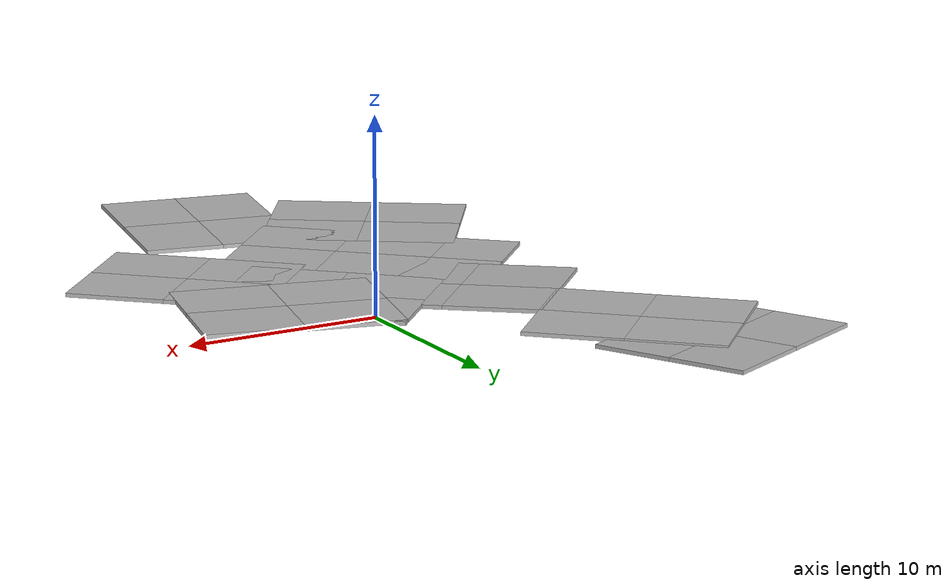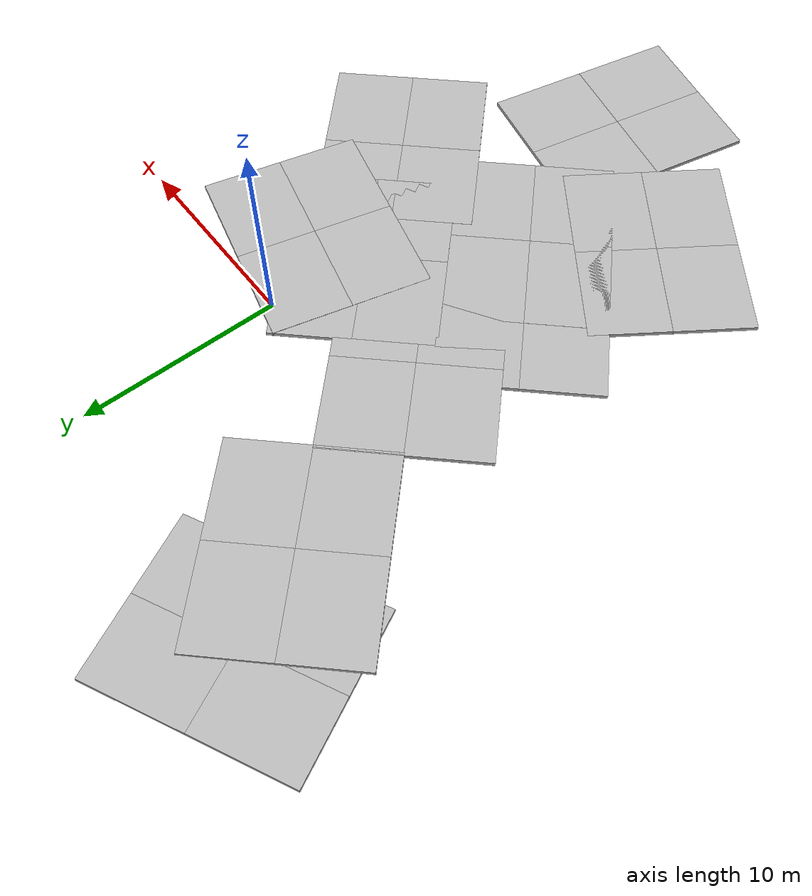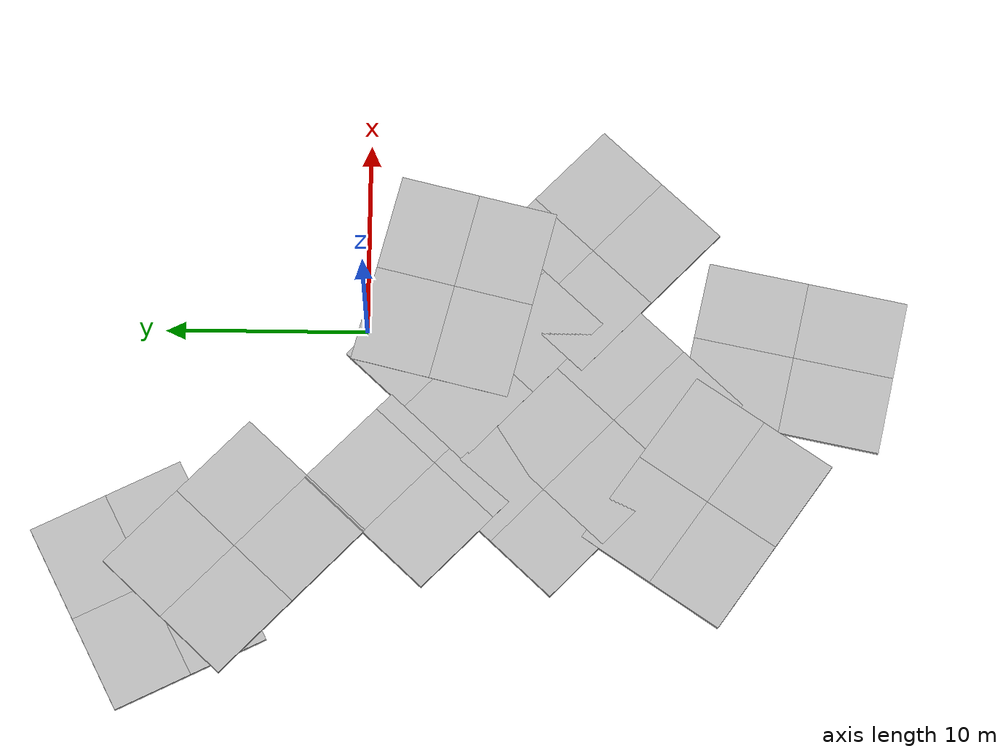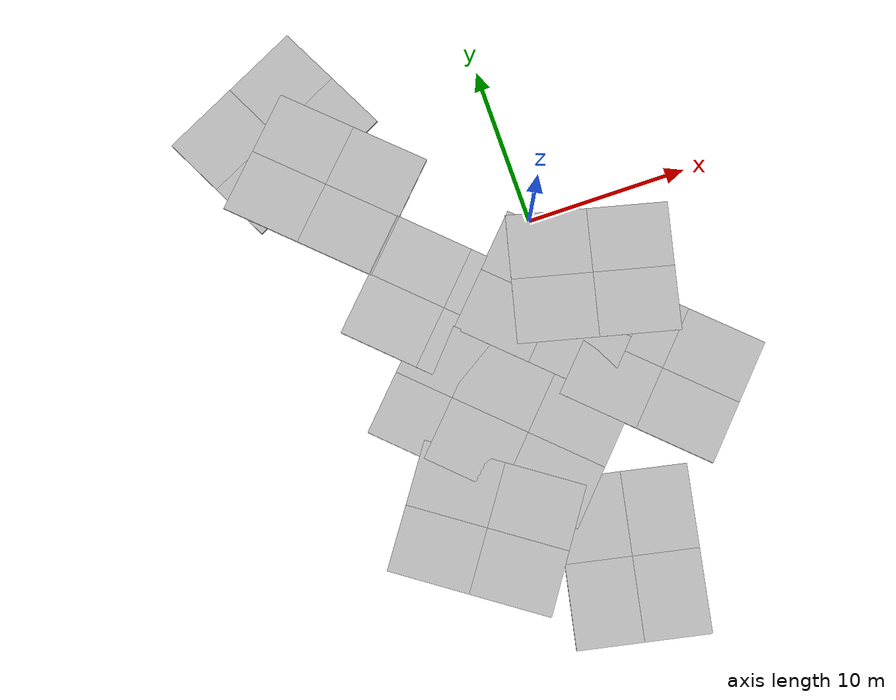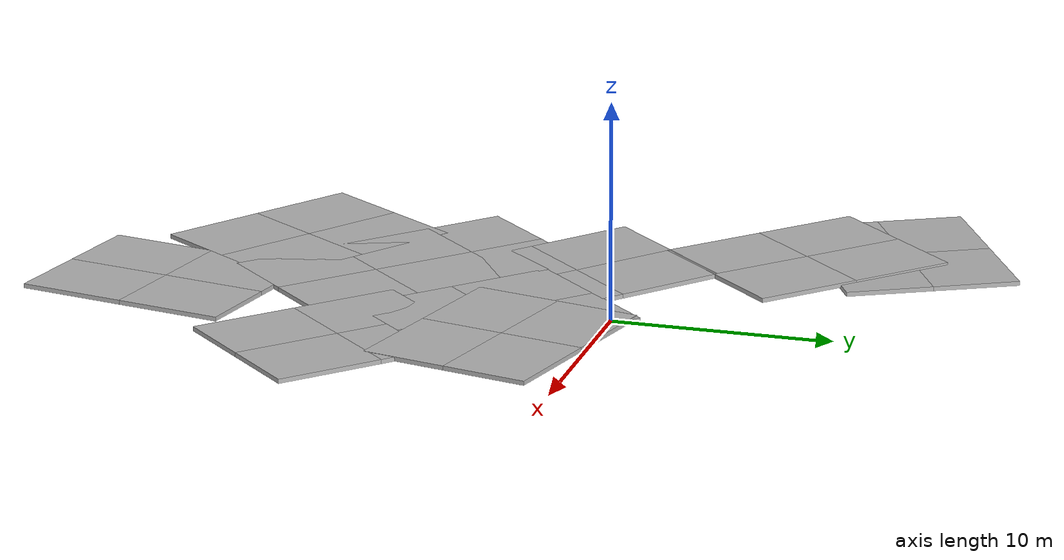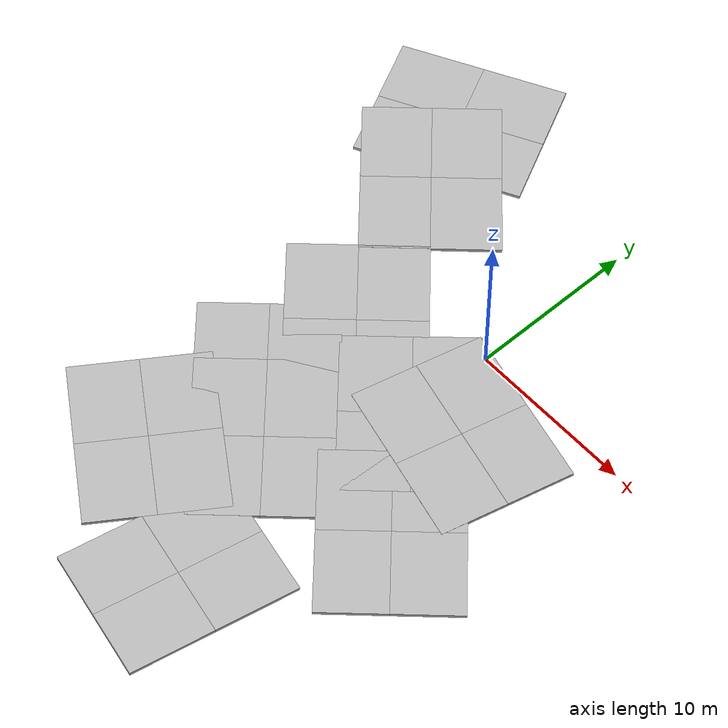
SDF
<sdf version="1.6">
 <world name="default">
  <scene>
   <sky><clouds><speed>12</speed></clouds></sky>
   <ambient>1 1 1 1</ambient>
   <shadows>1</shadows>
   <background>0.7 0.7 0.7 1</background>
  </scene>
  <light name="sun" type="directional">
   <pose>0 0 10 0 -0 0</pose>
   <diffuse>0.8 0.8 0.8 1</diffuse>
   <specular>0.2 0.2 0.2 1</specular>
   <attenuation>
    <range>1000</range>
    <constant>0.9</constant>
    <linear>0.01</linear>
    <quadratic>0.001</quadratic>
   </attenuation>
   <direction>-0.5 0.1 -0.9</direction>
  </light>
  <gravity>0 0 -9.8</gravity>
  <magnetic_field>6e-06 2.3e-05 -4.2e-05</magnetic_field>
  <atmosphere type="adiabatic"/>
  <physics name="default_physics" default="0" type="ode">
   <max_step_size>0.001</max_step_size>
   <real_time_factor>1</real_time_factor>
   <real_time_update_rate>1000</real_time_update_rate>
  </physics>
  <spherical_coordinates>
   <surface_model>EARTH_WGS84</surface_model>
   <latitude_deg>0</latitude_deg>
   <longitude_deg>0</longitude_deg>
   <elevation>0</elevation>
   <heading_deg>0</heading_deg>
  </spherical_coordinates>
  <model name="mud_box">
   <static>1</static>
   <link name="link">
    <collision name="collision">
     <geometry><box><size>8 10 0.2</size></box></geometry>
     <surface><friction><ode><mu>0.15</mu><mu2>0.15</mu2></ode></friction></surface>
    </collision>
    <visual name="visual_1">
     <pose>-2 2.5 0 0 -0 0</pose>
     <cast_shadows>0</cast_shadows>
     <geometry><box><size>4 5 0.2</size></box></geometry>
     <material>
      <script>
       <uri>model://mud_box/materials/scripts</uri>
       <uri>model://mud_box/materials/textures</uri>
       <name>vrc/mud</name>
      </script>
     </material>
    </visual>
    <visual name="visual_2">
     <pose>2 2.5 0 0 -0 0</pose>
     <cast_shadows>0</cast_shadows>
     <geometry><box><size>4 5 0.2</size></box></geometry>
     <material>
      <script>
       <uri>model://mud_box/materials/scripts</uri>
       <uri>model://mud_box/materials/textures</uri>
       <name>vrc/mud</name>
      </script>
     </material>
    </visual>
    <visual name="visual_3">
     <pose>2 -2.5 0 0 -0 0</pose>
     <cast_shadows>0</cast_shadows>
     <geometry><box><size>4 5 0.2</size></box></geometry>
     <material>
      <script>
       <uri>model://mud_box/materials/scripts</uri>
       <uri>model://mud_box/materials/textures</uri>
       <name>vrc/mud</name>
      </script>
     </material>
    </visual>
    <visual name="visual_4">
     <pose>-2 -2.5 0 0 -0 0</pose>
     <cast_shadows>0</cast_shadows>
     <geometry><box><size>4 5 0.2</size></box></geometry>
     <material>
      <script>
       <uri>model://mud_box/materials/scripts</uri>
       <uri>model://mud_box/materials/textures</uri>
       <name>vrc/mud</name>
      </script>
     </material>
    </visual>
   </link>
   <pose>-7.04174 -9.64287 -0.20001 0.003053 -0.000788 0.81082</pose>
  </model>
  <model name="mud_box_clone">
   <static>1</static>
   <link name="link">
    <collision name="collision">
     <geometry><box><size>8 10 0.2</size></box></geometry>
     <surface><friction><ode><mu>0.15</mu><mu2>0.15</mu2></ode></friction></surface>
    </collision>
    <visual name="visual_1">
     <pose>-2 2.5 0 0 -0 0</pose>
     <cast_shadows>0</cast_shadows>
     <geometry><box><size>4 5 0.2</size></box></geometry>
     <material>
      <script>
       <uri>model://mud_box/materials/scripts</uri>
       <uri>model://mud_box/materials/textures</uri>
       <name>vrc/mud</name>
      </script>
     </material>
    </visual>
    <visual name="visual_2">
     <pose>2 2.5 0 0 -0 0</pose>
     <cast_shadows>0</cast_shadows>
     <geometry><box><size>4 5 0.2</size></box></geometry>
     <material>
      <script>
       <uri>model://mud_box/materials/scripts</uri>
       <uri>model://mud_box/materials/textures</uri>
       <name>vrc/mud</name>
      </script>
     </material>
    </visual>
    <visual name="visual_3">
     <pose>2 -2.5 0 0 -0 0</pose>
     <cast_shadows>0</cast_shadows>
     <geometry><box><size>4 5 0.2</size></box></geometry>
     <material>
      <script>
       <uri>model://mud_box/materials/scripts</uri>
       <uri>model://mud_box/materials/textures</uri>
       <name>vrc/mud</name>
      </script>
     </material>
    </visual>
    <visual name="visual_4">
     <pose>-2 -2.5 0 0 -0 0</pose>
     <cast_shadows>0</cast_shadows>
     <geometry><box><size>4 5 0.2</size></box></geometry>
     <material>
      <script>
       <uri>model://mud_box/materials/scripts</uri>
       <uri>model://mud_box/materials/textures</uri>
       <name>vrc/mud</name>
      </script>
     </material>
    </visual>
   </link>
   <pose>-0.184977 -5.28763 -0.189201 0 -0 0.810832</pose>
  </model>
  <model name="mud_box_clone_0_clone">
   <static>1</static>
   <link name="link">
    <collision name="collision">
     <geometry><box><size>8 10 0.2</size></box></geometry>
     <surface><friction><ode><mu>0.15</mu><mu2>0.15</mu2></ode></friction></surface>
    </collision>
    <visual name="visual_1">
     <pose>-2 2.5 0 0 -0 0</pose>
     <cast_shadows>0</cast_shadows>
     <geometry><box><size>4 5 0.2</size></box></geometry>
     <material>
      <script>
       <uri>model://mud_box/materials/scripts</uri>
       <uri>model://mud_box/materials/textures</uri>
       <name>vrc/mud</name>
      </script>
     </material>
    </visual>
    <visual name="visual_2">
     <pose>2 2.5 0 0 -0 0</pose>
     <cast_shadows>0</cast_shadows>
     <geometry><box><size>4 5 0.2</size></box></geometry>
     <material>
      <script>
       <uri>model://mud_box/materials/scripts</uri>
       <uri>model://mud_box/materials/textures</uri>
       <name>vrc/mud</name>
      </script>
     </material>
    </visual>
    <visual name="visual_3">
     <pose>2 -2.5 0 0 -0 0</pose>
     <cast_shadows>0</cast_shadows>
     <geometry><box><size>4 5 0.2</size></box></geometry>
     <material>
      <script>
       <uri>model://mud_box/materials/scripts</uri>
       <uri>model://mud_box/materials/textures</uri>
       <name>vrc/mud</name>
      </script>
     </material>
    </visual>
    <visual name="visual_4">
     <pose>-2 -2.5 0 0 -0 0</pose>
     <cast_shadows>0</cast_shadows>
     <geometry><box><size>4 5 0.2</size></box></geometry>
     <material>
      <script>
       <uri>model://mud_box/materials/scripts</uri>
       <uri>model://mud_box/materials/textures</uri>
       <name>vrc/mud</name>
      </script>
     </material>
    </visual>
   </link>
   <pose>-11.0869 6.25544 -0.039155 0 -0 0.810832</pose>
  </model>
  <model name="mud_box_clone_2">
   <static>1</static>
   <link name="link">
    <collision name="collision">
     <geometry><box><size>8 10 0.2</size></box></geometry>
     <surface><friction><ode><mu>0.15</mu><mu2>0.15</mu2></ode></friction></surface>
    </collision>
    <visual name="visual_1">
     <pose>-2 2.5 0 0 -0 0</pose>
     <cast_shadows>0</cast_shadows>
     <geometry><box><size>4 5 0.2</size></box></geometry>
     <material>
      <script>
       <uri>model://mud_box/materials/scripts</uri>
       <uri>model://mud_box/materials/textures</uri>
       <name>vrc/mud</name>
      </script>
     </material>
    </visual>
    <visual name="visual_2">
     <pose>2 2.5 0 0 -0 0</pose>
     <cast_shadows>0</cast_shadows>
     <geometry><box><size>4 5 0.2</size></box></geometry>
     <material>
      <script>
       <uri>model://mud_box/materials/scripts</uri>
       <uri>model://mud_box/materials/textures</uri>
       <name>vrc/mud</name>
      </script>
     </material>
    </visual>
    <visual name="visual_3">
     <pose>2 -2.5 0 0 -0 0</pose>
     <cast_shadows>0</cast_shadows>
     <geometry><box><size>4 5 0.2</size></box></geometry>
     <material>
      <script>
       <uri>model://mud_box/materials/scripts</uri>
       <uri>model://mud_box/materials/textures</uri>
       <name>vrc/mud</name>
      </script>
     </material>
    </visual>
    <visual name="visual_4">
     <pose>-2 -2.5 0 0 -0 0</pose>
     <cast_shadows>0</cast_shadows>
     <geometry><box><size>4 5 0.2</size></box></geometry>
     <material>
      <script>
       <uri>model://mud_box/materials/scripts</uri>
       <uri>model://mud_box/materials/textures</uri>
       <name>vrc/mud</name>
      </script>
     </material>
    </visual>
   </link>
   <pose>2.59836 -4.23928 -0.170839 -0.000527 -0.0031 1.32936</pose>
  </model>
  <model name="mud_box_clone_0_clone_0">
   <static>1</static>
   <link name="link">
    <collision name="collision">
     <geometry><box><size>8 10 0.2</size></box></geometry>
     <surface><friction><ode><mu>0.15</mu><mu2>0.15</mu2></ode></friction></surface>
    </collision>
    <visual name="visual_1">
     <pose>-2 2.5 0 0 -0 0</pose>
     <cast_shadows>0</cast_shadows>
     <geometry><box><size>4 5 0.2</size></box></geometry>
     <material>
      <script>
       <uri>model://mud_box/materials/scripts</uri>
       <uri>model://mud_box/materials/textures</uri>
       <name>vrc/mud</name>
      </script>
     </material>
    </visual>
    <visual name="visual_2">
     <pose>2 2.5 0 0 -0 0</pose>
     <cast_shadows>0</cast_shadows>
     <geometry><box><size>4 5 0.2</size></box></geometry>
     <material>
      <script>
       <uri>model://mud_box/materials/scripts</uri>
       <uri>model://mud_box/materials/textures</uri>
       <name>vrc/mud</name>
      </script>
     </material>
    </visual>
    <visual name="visual_3">
     <pose>2 -2.5 0 0 -0 0</pose>
     <cast_shadows>0</cast_shadows>
     <geometry><box><size>4 5 0.2</size></box></geometry>
     <material>
      <script>
       <uri>model://mud_box/materials/scripts</uri>
       <uri>model://mud_box/materials/textures</uri>
       <name>vrc/mud</name>
      </script>
     </material>
    </visual>
    <visual name="visual_4">
     <pose>-2 -2.5 0 0 -0 0</pose>
     <cast_shadows>0</cast_shadows>
     <geometry><box><size>4 5 0.2</size></box></geometry>
     <material>
      <script>
       <uri>model://mud_box/materials/scripts</uri>
       <uri>model://mud_box/materials/textures</uri>
       <name>vrc/mud</name>
      </script>
     </material>
    </visual>
   </link>
   <pose>-13.0759 10.3805 -0.164534 -0.010035 -0.002014 2.03757</pose>
  </model>
  <model name="mud_box_clone_0_clone_clone">
   <static>1</static>
   <link name="link">
    <collision name="collision">
     <geometry><box><size>8 10 0.2</size></box></geometry>
     <surface><friction><ode><mu>0.15</mu><mu2>0.15</mu2></ode></friction></surface>
    </collision>
    <visual name="visual_1">
     <pose>-2 2.5 0 0 -0 0</pose>
     <cast_shadows>0</cast_shadows>
     <geometry><box><size>4 5 0.2</size></box></geometry>
     <material>
      <script>
       <uri>model://mud_box/materials/scripts</uri>
       <uri>model://mud_box/materials/textures</uri>
       <name>vrc/mud</name>
      </script>
     </material>
    </visual>
    <visual name="visual_2">
     <pose>2 2.5 0 0 -0 0</pose>
     <cast_shadows>0</cast_shadows>
     <geometry><box><size>4 5 0.2</size></box></geometry>
     <material>
      <script>
       <uri>model://mud_box/materials/scripts</uri>
       <uri>model://mud_box/materials/textures</uri>
       <name>vrc/mud</name>
      </script>
     </material>
    </visual>
    <visual name="visual_3">
     <pose>2 -2.5 0 0 -0 0</pose>
     <cast_shadows>0</cast_shadows>
     <geometry><box><size>4 5 0.2</size></box></geometry>
     <material>
      <script>
       <uri>model://mud_box/materials/scripts</uri>
       <uri>model://mud_box/materials/textures</uri>
       <name>vrc/mud</name>
      </script>
     </material>
    </visual>
    <visual name="visual_4">
     <pose>-2 -2.5 0 0 -0 0</pose>
     <cast_shadows>0</cast_shadows>
     <geometry><box><size>4 5 0.2</size></box></geometry>
     <material>
      <script>
       <uri>model://mud_box/materials/scripts</uri>
       <uri>model://mud_box/materials/textures</uri>
       <name>vrc/mud</name>
      </script>
     </material>
    </visual>
   </link>
   <pose>-6.68656 -3.40047 -0.162765 0.024988 -0 0.810832</pose>
  </model>
  <model name="mud_box_clone_clone">
   <static>1</static>
   <link name="link">
    <collision name="collision">
     <geometry><box><size>8 10 0.2</size></box></geometry>
     <surface><friction><ode><mu>0.15</mu><mu2>0.15</mu2></ode></friction></surface>
    </collision>
    <visual name="visual_1">
     <pose>-2 2.5 0 0 -0 0</pose>
     <cast_shadows>0</cast_shadows>
     <geometry><box><size>4 5 0.2</size></box></geometry>
     <material>
      <script>
       <uri>model://mud_box/materials/scripts</uri>
       <uri>model://mud_box/materials/textures</uri>
       <name>vrc/mud</name>
      </script>
     </material>
    </visual>
    <visual name="visual_2">
     <pose>2 2.5 0 0 -0 0</pose>
     <cast_shadows>0</cast_shadows>
     <geometry><box><size>4 5 0.2</size></box></geometry>
     <material>
      <script>
       <uri>model://mud_box/materials/scripts</uri>
       <uri>model://mud_box/materials/textures</uri>
       <name>vrc/mud</name>
      </script>
     </material>
    </visual>
    <visual name="visual_3">
     <pose>2 -2.5 0 0 -0 0</pose>
     <cast_shadows>0</cast_shadows>
     <geometry><box><size>4 5 0.2</size></box></geometry>
     <material>
      <script>
       <uri>model://mud_box/materials/scripts</uri>
       <uri>model://mud_box/materials/textures</uri>
       <name>vrc/mud</name>
      </script>
     </material>
    </visual>
    <visual name="visual_4">
     <pose>-2 -2.5 0 0 -0 0</pose>
     <cast_shadows>0</cast_shadows>
     <geometry><box><size>4 5 0.2</size></box></geometry>
     <material>
      <script>
       <uri>model://mud_box/materials/scripts</uri>
       <uri>model://mud_box/materials/textures</uri>
       <name>vrc/mud</name>
      </script>
     </material>
    </visual>
   </link>
   <pose>-4.35601 -12.1853 -0.195277 0 -0 0.810832</pose>
  </model>
  <model name="mud_box_clone_clone_0">
   <static>1</static>
   <link name="link">
    <collision name="collision">
     <geometry><box><size>8 10 0.2</size></box></geometry>
     <surface><friction><ode><mu>0.15</mu><mu2>0.15</mu2></ode></friction></surface>
    </collision>
    <visual name="visual_1">
     <pose>-2 2.5 0 0 -0 0</pose>
     <cast_shadows>0</cast_shadows>
     <geometry><box><size>4 5 0.2</size></box></geometry>
     <material>
      <script>
       <uri>model://mud_box/materials/scripts</uri>
       <uri>model://mud_box/materials/textures</uri>
       <name>vrc/mud</name>
      </script>
     </material>
    </visual>
    <visual name="visual_2">
     <pose>2 2.5 0 0 -0 0</pose>
     <cast_shadows>0</cast_shadows>
     <geometry><box><size>4 5 0.2</size></box></geometry>
     <material>
      <script>
       <uri>model://mud_box/materials/scripts</uri>
       <uri>model://mud_box/materials/textures</uri>
       <name>vrc/mud</name>
      </script>
     </material>
    </visual>
    <visual name="visual_3">
     <pose>2 -2.5 0 0 -0 0</pose>
     <cast_shadows>0</cast_shadows>
     <geometry><box><size>4 5 0.2</size></box></geometry>
     <material>
      <script>
       <uri>model://mud_box/materials/scripts</uri>
       <uri>model://mud_box/materials/textures</uri>
       <name>vrc/mud</name>
      </script>
     </material>
    </visual>
    <visual name="visual_4">
     <pose>-2 -2.5 0 0 -0 0</pose>
     <cast_shadows>0</cast_shadows>
     <geometry><box><size>4 5 0.2</size></box></geometry>
     <material>
      <script>
       <uri>model://mud_box/materials/scripts</uri>
       <uri>model://mud_box/materials/textures</uri>
       <name>vrc/mud</name>
      </script>
     </material>
    </visual>
   </link>
   <pose>4.57541 -11.1345 -0.189201 0 -0 0.810832</pose>
  </model>
  <model name="mud_box_clone_clone_clone">
   <static>1</static>
   <link name="link">
    <collision name="collision">
     <geometry><box><size>8 10 0.2</size></box></geometry>
     <surface><friction><ode><mu>0.15</mu><mu2>0.15</mu2></ode></friction></surface>
    </collision>
    <visual name="visual_1">
     <pose>-2 2.5 0 0 -0 0</pose>
     <cast_shadows>0</cast_shadows>
     <geometry><box><size>4 5 0.2</size></box></geometry>
     <material>
      <script>
       <uri>model://mud_box/materials/scripts</uri>
       <uri>model://mud_box/materials/textures</uri>
       <name>vrc/mud</name>
      </script>
     </material>
    </visual>
    <visual name="visual_2">
     <pose>2 2.5 0 0 -0 0</pose>
     <cast_shadows>0</cast_shadows>
     <geometry><box><size>4 5 0.2</size></box></geometry>
     <material>
      <script>
       <uri>model://mud_box/materials/scripts</uri>
       <uri>model://mud_box/materials/textures</uri>
       <name>vrc/mud</name>
      </script>
     </material>
    </visual>
    <visual name="visual_3">
     <pose>2 -2.5 0 0 -0 0</pose>
     <cast_shadows>0</cast_shadows>
     <geometry><box><size>4 5 0.2</size></box></geometry>
     <material>
      <script>
       <uri>model://mud_box/materials/scripts</uri>
       <uri>model://mud_box/materials/textures</uri>
       <name>vrc/mud</name>
      </script>
     </material>
    </visual>
    <visual name="visual_4">
     <pose>-2 -2.5 0 0 -0 0</pose>
     <cast_shadows>0</cast_shadows>
     <geometry><box><size>4 5 0.2</size></box></geometry>
     <material>
      <script>
       <uri>model://mud_box/materials/scripts</uri>
       <uri>model://mud_box/materials/textures</uri>
       <name>vrc/mud</name>
      </script>
     </material>
    </visual>
   </link>
   <pose>-0.98051 -21.0462 -0.195578 0 0 -0.20393</pose>
  </model>
  <model name="mud_box_clone_clone_clone_0">
   <static>1</static>
   <link name="link">
    <collision name="collision">
     <geometry><box><size>8 10 0.2</size></box></geometry>
     <surface><friction><ode><mu>0.15</mu><mu2>0.15</mu2></ode></friction></surface>
    </collision>
    <visual name="visual_1">
     <pose>-2 2.5 0 0 -0 0</pose>
     <cast_shadows>0</cast_shadows>
     <geometry><box><size>4 5 0.2</size></box></geometry>
     <material>
      <script>
       <uri>model://mud_box/materials/scripts</uri>
       <uri>model://mud_box/materials/textures</uri>
       <name>vrc/mud</name>
      </script>
     </material>
    </visual>
    <visual name="visual_2">
     <pose>2 2.5 0 0 -0 0</pose>
     <cast_shadows>0</cast_shadows>
     <geometry><box><size>4 5 0.2</size></box></geometry>
     <material>
      <script>
       <uri>model://mud_box/materials/scripts</uri>
       <uri>model://mud_box/materials/textures</uri>
       <name>vrc/mud</name>
      </script>
     </material>
    </visual>
    <visual name="visual_3">
     <pose>2 -2.5 0 0 -0 0</pose>
     <cast_shadows>0</cast_shadows>
     <geometry><box><size>4 5 0.2</size></box></geometry>
     <material>
      <script>
       <uri>model://mud_box/materials/scripts</uri>
       <uri>model://mud_box/materials/textures</uri>
       <name>vrc/mud</name>
      </script>
     </material>
    </visual>
    <visual name="visual_4">
     <pose>-2 -2.5 0 0 -0 0</pose>
     <cast_shadows>0</cast_shadows>
     <geometry><box><size>4 5 0.2</size></box></geometry>
     <material>
      <script>
       <uri>model://mud_box/materials/scripts</uri>
       <uri>model://mud_box/materials/textures</uri>
       <name>vrc/mud</name>
      </script>
     </material>
    </visual>
   </link>
   <pose>-8.50725 -16.7398 -0.195277 0 -0 0.969214</pose>
  </model>
 </world>
</sdf>
